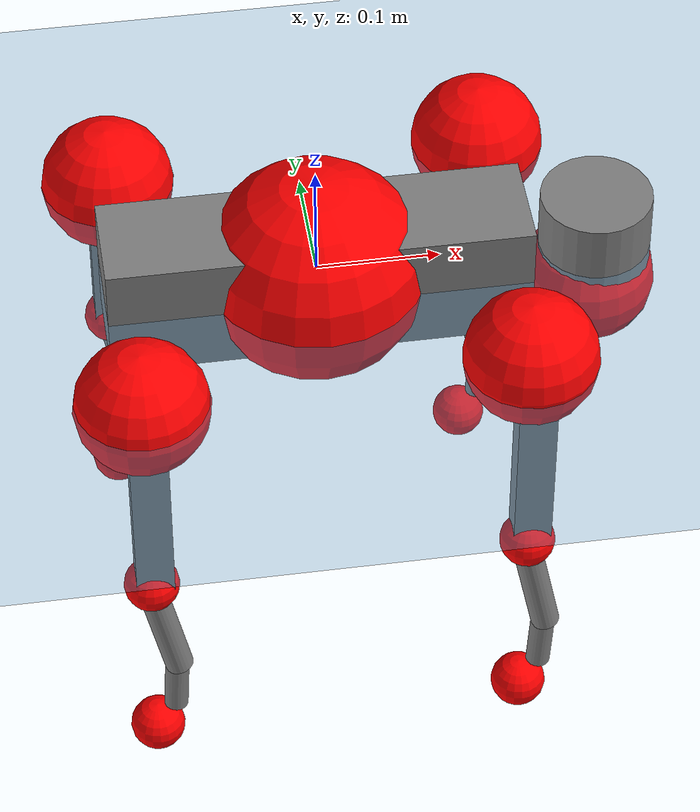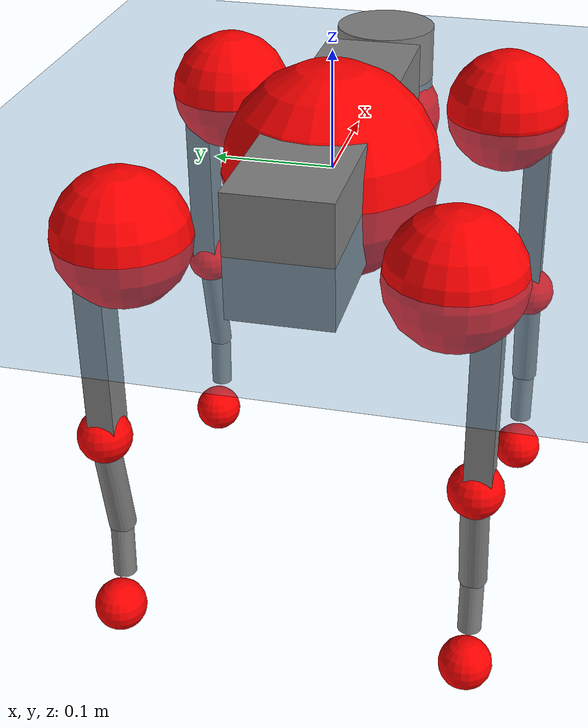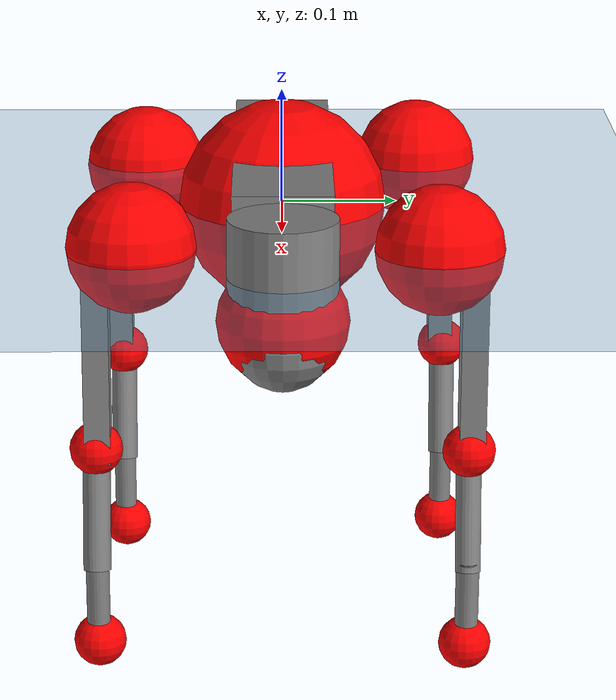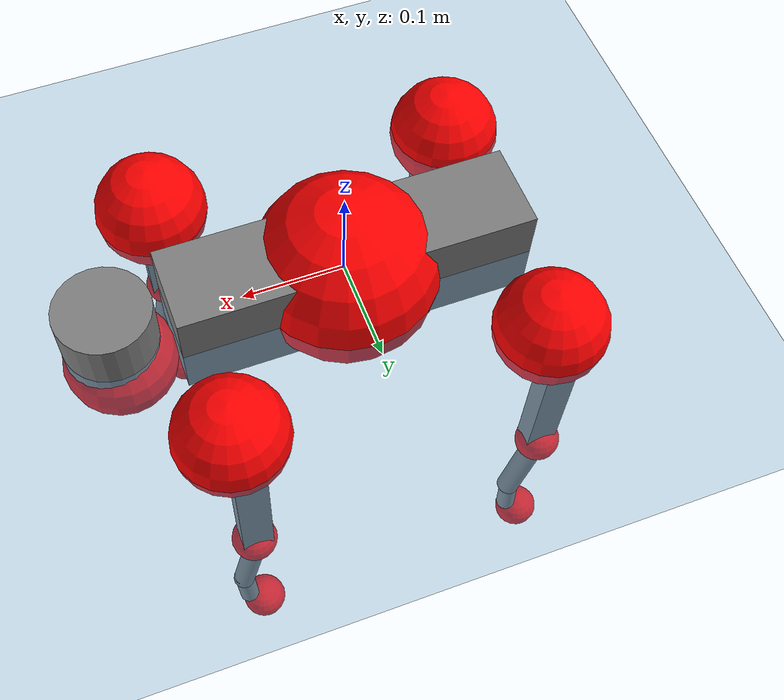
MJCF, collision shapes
<mujoco model="go2">
  <compiler angle="radian" assetdir="assets" balanceinertia="true" inertiafromgeom="false"/>

  <option timestep="0.005" density="1.2" viscosity="2e-05"/>

  <size nkey="1"/>

  <visual>
    <quality shadowsize="8192"/>
    <map shadowclip="0.5"/>
  </visual>

  <default>
    <default class="/">
      <geom contype="0" conaffinity="0" group="1" solref="-1000 -80"/>
      <site size="0.01 0.005 0.005" group="5"/>
      <general forcelimited="true" biastype="affine" gainprm="20" biasprm="0 -20 -0.5"/>
      <default class="go2">
        <joint armature="0.01" damping="0.01" frictionloss="0.2"/>
        <geom condim="1" margin="0.001"/>
        <default class="visual">
          <geom type="mesh" group="2"/>
        </default>
        <default class="collision">
          <geom group="3"/>
          <default class="foot">
            <geom size="0.022 0 0" condim="6" priority="1" friction="0.8 0.02 0.01" solimp="0.015 1 0.022"/>
          </default>
        </default>
        <default class="reward_collision_sphere">
          <geom group="5" rgba="1 0 0 1"/>
        </default>
      </default>
    </default>
  </default>

  <asset>
    <texture type="skybox" colorspace="auto" name="//unnamed_texture_0" builtin="gradient" rgb1="0.95 0.95 0.95" rgb2="0.95 0.95 0.95" width="100" height="600"/>
    <texture type="2d" colorspace="auto" name="texplane" builtin="checker" rgb1="0.345 0.575 0.748" rgb2="0.345 0.575 0.748" markrgb="1 1 1" width="512" height="512"/>
    <material name="MatPlane" class="/" texture="texplane" texuniform="true" texrepeat="2 2" specular="0.9"/>
    <material name="metal" class="/" rgba="0.9 0.95 0.95 1"/>
    <material name="black" class="/" rgba="0 0 0 1"/>
    <material name="white" class="/"/>
    <material name="gray" class="/" rgba="0.671705 0.692426 0.77427 1"/>
    <mesh name="base_0" class="/" file="base_0.obj"/>
    <mesh name="base_1" class="/" file="base_1.obj"/>
    <mesh name="base_2" class="/" file="base_2.obj"/>
    <mesh name="base_3" class="/" file="base_3.obj"/>
    <mesh name="base_4" class="/" file="base_4.obj"/>
    <mesh name="hip_0" class="/" file="hip_0.obj"/>
    <mesh name="hip_1" class="/" file="hip_1.obj"/>
    <mesh name="thigh_0" class="/" file="thigh_0.obj"/>
    <mesh name="thigh_1" class="/" file="thigh_1.obj"/>
    <mesh name="thigh_mirror_0" class="/" file="thigh_mirror_0.obj"/>
    <mesh name="thigh_mirror_1" class="/" file="thigh_mirror_1.obj"/>
    <mesh name="calf_0" class="/" file="calf_0.obj"/>
    <mesh name="calf_1" class="/" file="calf_1.obj"/>
    <mesh name="calf_mirror_0" class="/" file="calf_mirror_0.obj"/>
    <mesh name="calf_mirror_1" class="/" file="calf_mirror_1.obj"/>
    <mesh name="foot" class="/" file="foot.obj"/>
  </asset>

  <worldbody>
    <geom name="floor" class="/" size="100 100 0.125" type="plane" group="0" material="MatPlane"/>
    <light name="toplight_shadow" class="/" pos="0 0 5" dir="0.0990148 0.0990148 -0.990148" type="directional" ambient="0.04 0.04 0.04" diffuse="0.55 0.55 0.55" specular="0.12 0.12 0.12"/>
    <light name="toplight_fill" class="/" pos="0 0 5" dir="0.0990148 0.0990148 -0.990148" type="directional" castshadow="false" ambient="0.04 0.04 0.04" diffuse="0.3 0.3 0.3" specular="0.08 0.08 0.08"/>
    <body name="trunk" childclass="go2" pos="-0.000838846 0.000529231 -0.00126268" quat="1 -0.000779813 -0.000347537 0.000252814">
      <inertial pos="0.015556 0.00222555 -0.0045499" quat="-0.0085699 0.71327 -0.00728672 0.700799" mass="5.05927" diaginertia="0.0353181 0.15243 0.0100618"/>
      <joint name="//unnamed_joint_0" type="free" armature="0" damping="0" frictionloss="0"/>
      <geom name="//unnamed_geom_1" class="visual" material="black" mesh="base_0"/>
      <geom name="//unnamed_geom_2" class="visual" material="black" mesh="base_1"/>
      <geom name="//unnamed_geom_3" class="visual" material="black" mesh="base_2"/>
      <geom name="//unnamed_geom_4" class="visual" material="white" mesh="base_3"/>
      <geom name="//unnamed_geom_5" class="visual" material="gray" mesh="base_4"/>
      <geom name="trunk_1" class="collision" size="0.170815 0.0424539 0.051762" type="box"/>
      <geom name="trunk_2" class="collision" size="0.0454053 0.0408648" pos="0.227298 0 0.00836956" type="cylinder"/>
      <geom name="trunk_3" class="collision" size="0.042681" pos="0.233678 0 -0.0502174"/>
      <geom name="//unnamed_geom_9" class="reward_collision_sphere" size="0.0908106"/>
      <geom name="//unnamed_geom_10" class="reward_collision_sphere" size="0.0544863" pos="0.22331 0 -0.037663"/>
      <site name="imu" pos="-0.0209733 0.0139228 0.0222081" size="0.00908106"/>
      <camera name="track" pos="0 -2.17965 0" quat="0.707107 0.707107 0 0" mode="trackcom"/>
      <camera name="ego_camera" pos="0.248831 0 0.037663" quat="-0.5 -0.5 0.5 0.5"/>
      <body name="FL_hip" pos="0.153205 0.0540789 0.00142521" quat="1 0.000224661 -0.00043924 -9.94239e-05">
        <inertial pos="-0.0063879 0.00201738 -0.000747278" quat="0.494084 0.499267 0.511137 0.495331" mass="0.492107" diaginertia="0.000284894 0.000873169 0.000189815"/>
        <joint name="FL_hip_joint" pos="0 0 0" axis="0.999998 0.00181573 -0.00112859" range="-1.0576 1.10324" armature="0.00916322" damping="0" frictionloss="0.205879"/>
        <geom name="//unnamed_geom_11" class="visual" material="metal" mesh="hip_0"/>
        <geom name="//unnamed_geom_12" class="visual" material="gray" mesh="hip_1"/>
        <geom name="//unnamed_geom_13" class="collision" size="0.0417729 0.0181621" pos="0 0.087186 0" quat="0.707107 0.707107 0 0" type="cylinder"/>
        <geom name="//unnamed_geom_14" class="reward_collision_sphere" size="0.0544863" pos="0 0.0762877 0"/>
        <body name="FL_thigh" pos="-0.00313454 0.106517 0.000824486" quat="1 -0.000279668 -0.000304476 5.66511e-05">
          <inertial pos="-0.00225577 -0.0241483 -0.0264392" quat="0.831876 0.0873495 -0.0240617 0.547516" mass="0.842461" diaginertia="0.00186716 0.00871731 0.000339588"/>
          <joint name="FL_thigh_joint" pos="0 0 0" axis="0.00539295 0.99996 -0.00706599" stiffness="0.00485596" range="-1.62229 3.49453" armature="0.00795842" damping="0.019294" frictionloss="0.181361"/>
          <geom name="//unnamed_geom_15" class="visual" material="metal" mesh="thigh_0"/>
          <geom name="//unnamed_geom_16" class="visual" material="gray" mesh="thigh_1"/>
          <geom name="//unnamed_geom_17" class="collision" size="0.0967132 0.0111243 0.0154378" pos="0 0 -0.0891358" quat="0.707107 0 0.707107 0" type="box"/>
          <body name="FL_calf" pos="0.00118961 -0.00205555 -0.179292" quat="1 -8.37554e-05 -1.71689e-05 -5.71316e-05">
            <inertial pos="0.00445385 -0.00232167 -0.117914" quat="0.712963 0.000946831 -0.002097 0.701198" mass="0.183076" diaginertia="0.000472949 0.00223825 2.18472e-05"/>
            <joint name="FL_calf_joint" pos="0 0 0" axis="-0.00956871 0.99985 -0.0144261" range="-2.73638 -0.779884" armature="0.00878956" damping="0" frictionloss="0.191152"/>
            <geom name="//unnamed_geom_18" class="visual" material="gray" mesh="calf_0"/>
            <geom name="//unnamed_geom_19" class="visual" material="black" mesh="calf_1"/>
            <geom name="FL_calf0" class="collision" size="0.0108973 0.0544863" pos="0.00638029 0 -0.0502174" quat="0.994493 0 -0.104807 0" type="cylinder"/>
            <geom name="//unnamed_geom_21" class="collision" size="0.00998916 0.0295134" pos="0.0159507 0 -0.12387" quat="0.999688 0 0.0249974 0" type="cylinder"/>
            <geom name="//unnamed_geom_22" class="visual" pos="0 0 -0.178272" quat="1 0 0 0" material="black" mesh="foot"/>
            <geom name="FL_foot" class="foot" size="0.0152796" pos="-0.00159507 0 -0.178272"/>
            <geom name="//unnamed_geom_24" class="reward_collision_sphere" size="0.0227026"/>
            <geom name="//unnamed_geom_25" class="reward_collision_sphere" size="0.0227026" pos="-0.00159507 0 -0.178272"/>
            <site name="FL_foot" class="foot" pos="-0.00159507 0 -0.178272" size="0.00908106"/>
          </body>
        </body>
      </body>
      <body name="FR_hip" pos="0.153189 -0.0494258 0.00320522" quat="1 -0.000430585 -0.000196419 0.00028057">
        <inertial pos="-0.00568676 -0.00231792 -0.000618441" quat="0.498488 0.500808 0.502139 0.498556" mass="0.506783" diaginertia="0.00027969 0.000903578 0.000192268"/>
        <joint name="FR_hip_joint" pos="0 0 0" axis="0.999908 0.00356741 -0.0131028" range="-1.07755 0.995214" armature="0.00935838" damping="0" frictionloss="0.207507"/>
        <geom name="//unnamed_geom_26" class="visual" pos="0 2.20289e-09 9.44864e-08" quat="4.63268e-05 1 0 0" material="metal" mesh="hip_0"/>
        <geom name="//unnamed_geom_27" class="visual" pos="0 3.57115e-09 -2.33701e-07" quat="4.63268e-05 1 0 0" material="gray" mesh="hip_1"/>
        <geom name="//unnamed_geom_28" class="collision" size="0.0417729 0.0181621" pos="0 -0.087186 0" quat="0.707107 0.707107 0 0" type="cylinder"/>
        <geom name="//unnamed_geom_29" class="reward_collision_sphere" size="0.0544863" pos="0 -0.0762877 0"/>
        <body name="FR_thigh" pos="-0.000544309 -0.106964 -0.00168279" quat="0.999999 0.000213096 0.00102253 0.000573638">
          <inertial pos="-0.00463062 0.0239885 -0.0291412" quat="0.549767 -0.0157695 0.0849162 0.830841" mass="0.894571" diaginertia="0.00191028 0.00872434 0.000372413"/>
          <joint name="FR_thigh_joint" pos="0 0 0" axis="-0.000921552 -0.999999 -0.000540402" stiffness="0.01077" range="-3.49081 1.51385" armature="0.00794947" damping="0.0121888" frictionloss="0.157988"/>
          <geom name="//unnamed_geom_30" class="visual" material="metal" mesh="thigh_mirror_0"/>
          <geom name="//unnamed_geom_31" class="visual" material="gray" mesh="thigh_mirror_1"/>
          <geom name="//unnamed_geom_32" class="collision" size="0.0967132 0.0111243 0.0154378" pos="0 0 -0.0891358" quat="0.707107 0 0.707107 0" type="box"/>
          <body name="FR_calf" pos="-0.00225182 -0.00172504 -0.176966" quat="1 3.81262e-05 6.30055e-06 -2.88068e-05">
            <inertial pos="0.00454649 -0.00117396 -0.116174" quat="0.70579 -0.00204022 0.000138553 0.708418" mass="0.177591" diaginertia="0.000475232 0.00225757 2.05553e-05"/>
            <joint name="FR_calf_joint" pos="0 0 0" axis="-0.000490834 -0.999999 0.00162872" range="0.841849 2.7387" armature="0.00872849" damping="0" frictionloss="0.158639"/>
            <geom name="//unnamed_geom_33" class="visual" material="gray" mesh="calf_mirror_0"/>
            <geom name="//unnamed_geom_34" class="visual" material="black" mesh="calf_mirror_1"/>
            <geom name="FR_calf0" class="collision" size="0.0118054 0.0544863" pos="0.00797536 0 -0.0502174" quat="0.995004 0 -0.0998334 0" type="cylinder"/>
            <geom name="//unnamed_geom_36" class="collision" size="0.00998916 0.0295134" pos="0.0159507 0 -0.12387" quat="0.999688 0 0.0249974 0" type="cylinder"/>
            <geom name="//unnamed_geom_37" class="visual" pos="0 0 -0.178272" quat="1 0 0 0" material="black" mesh="foot"/>
            <geom name="FR_foot" class="foot" size="0.0204722" pos="-0.00159507 0 -0.178272"/>
            <geom name="//unnamed_geom_39" class="reward_collision_sphere" size="0.0227026"/>
            <geom name="//unnamed_geom_40" class="reward_collision_sphere" size="0.0227026" pos="-0.00159507 0 -0.178272"/>
            <site name="FR_foot" class="foot" pos="-0.00159507 0 -0.178272" size="0.00908106"/>
          </body>
        </body>
      </body>
      <body name="RL_hip" pos="-0.154597 0.0481664 0.000189449" quat="0.999999 -0.0011874 -4.58788e-05 0.000225847">
        <inertial pos="0.00308462 0.000231868 -0.00118979" quat="0.50747 0.49904 0.48884 0.504449" mass="0.496055" diaginertia="0.000266739 0.000907064 0.000183915"/>
        <joint name="RL_hip_joint" pos="0 0 0" axis="-0.999995 0.00250046 0.00172562" range="-1.09277 1.08361" armature="0.0101339" damping="0.0179438" frictionloss="0.178713"/>
        <geom name="//unnamed_geom_41" class="visual" pos="3.43414e-10 0 6.7317e-08" quat="4.63268e-05 0 1 0" material="metal" mesh="hip_0"/>
        <geom name="//unnamed_geom_42" class="visual" pos="5.56715e-10 0 5.97006e-08" quat="4.63268e-05 0 1 0" material="gray" mesh="hip_1"/>
        <geom name="//unnamed_geom_43" class="collision" size="0.0417729 0.0181621" pos="0 0.087186 0" quat="0.707107 0.707107 0 0" type="cylinder"/>
        <geom name="//unnamed_geom_44" class="reward_collision_sphere" size="0.0544863" pos="0 0.0762877 0"/>
        <body name="RL_thigh" pos="-0.00140296 0.102128 -0.00156593" quat="0.999999 0.00106679 -0.000215194 0.000905503">
          <inertial pos="-0.00211517 -0.0268617 -0.0284295" quat="0.829487 0.0848162 -0.0199264 0.551688" mass="0.877623" diaginertia="0.00197523 0.00896545 0.000376152"/>
          <joint name="RL_thigh_joint" pos="0 0 0" axis="0.00393541 0.999977 0.00546989" stiffness="0.0145148" range="-0.579464 4.52597" armature="0.00885722" damping="0.0120299" frictionloss="0.203231"/>
          <geom name="//unnamed_geom_45" class="visual" material="metal" mesh="thigh_0"/>
          <geom name="//unnamed_geom_46" class="visual" material="gray" mesh="thigh_1"/>
          <geom name="//unnamed_geom_47" class="collision" size="0.0967132 0.0111243 0.0154378" pos="0 0 -0.0891358" quat="0.707107 0 0.707107 0" type="box"/>
          <body name="RL_calf" pos="-0.00136205 0.00267417 -0.180857" quat="0.999999 0.000515923 -0.000448508 0.001053">
            <inertial pos="0.00358619 0.00223863 -0.119157" quat="0.707515 0.00402246 -0.013055 0.706566" mass="0.172547" diaginertia="0.000463794 0.00210045 2.16439e-05"/>
            <joint name="RL_calf_joint" pos="0 0 0" axis="-0.00940024 0.999937 -0.00610864" range="-2.73238 -0.848075" armature="0.00996842" damping="0.00296898" frictionloss="0.179917"/>
            <geom name="//unnamed_geom_48" class="visual" material="gray" mesh="calf_0"/>
            <geom name="//unnamed_geom_49" class="visual" material="black" mesh="calf_1"/>
            <geom name="RL_calf0" class="collision" size="0.0118054 0.0544863" pos="0.00797536 0 -0.0502174" quat="0.995004 0 -0.0998334 0" type="cylinder"/>
            <geom name="//unnamed_geom_51" class="collision" size="0.00998916 0.0295134" pos="0.0159507 0 -0.12387" quat="0.999688 0 0.0249974 0" type="cylinder"/>
            <geom name="//unnamed_geom_52" class="visual" pos="0 0 -0.178272" quat="1 0 0 0" material="black" mesh="foot"/>
            <geom name="RL_foot" class="foot" size="0.0204386" pos="-0.00159507 0 -0.178272"/>
            <geom name="//unnamed_geom_54" class="reward_collision_sphere" size="0.0227026"/>
            <geom name="//unnamed_geom_55" class="reward_collision_sphere" size="0.0227026" pos="-0.00159507 0 -0.178272"/>
            <site name="RL_foot" class="foot" pos="-0.00159507 0 -0.178272" size="0.00908106"/>
          </body>
        </body>
      </body>
      <body name="RR_hip" pos="-0.153132 -0.0501959 -0.00598982" quat="1 0.000128037 -0.000143743 -0.000181799">
        <inertial pos="0.00160169 -0.00474384 -0.000186592" quat="0.494955 0.496471 0.495033 0.513302" mass="0.512242" diaginertia="0.000295651 0.00092823 0.000206883"/>
        <joint name="RR_hip_joint" pos="0 0 0" axis="-0.999992 -0.00367612 0.00134619" range="-1.09379 1.04823" armature="0.00913876" damping="0.00320831" frictionloss="0.188635"/>
        <geom name="//unnamed_geom_56" class="visual" pos="-3.33295e-10 2.20289e-09 -2.71694e-08" quat="2.14617e-09 4.63268e-05 4.63268e-05 -1" material="metal" mesh="hip_0"/>
        <geom name="//unnamed_geom_57" class="visual" pos="-5.81744e-10 3.57115e-09 2.93402e-07" quat="2.14617e-09 4.63268e-05 4.63268e-05 -1" material="gray" mesh="hip_1"/>
        <geom name="//unnamed_geom_58" class="collision" size="0.0417729 0.0181621" pos="0 -0.087186 0" quat="0.707107 0.707107 0 0" type="cylinder"/>
        <geom name="//unnamed_geom_59" class="reward_collision_sphere" size="0.0544863" pos="0 -0.0762877 0"/>
        <body name="RR_thigh" pos="7.87511e-05 -0.102449 -0.00220114" quat="1 -1.04337e-05 4.45345e-05 -3.36941e-06">
          <inertial pos="-0.000918378 0.0219191 -0.0274438" quat="0.556164 -0.0302926 0.0924309 0.825361" mass="0.839073" diaginertia="0.00194345 0.00879974 0.000357011"/>
          <joint name="RR_thigh_joint" pos="0 0 0" axis="-0.0159594 -0.999802 0.0118616" range="-4.53054 0.469964" armature="0.00917387" damping="0" frictionloss="0.17446"/>
          <geom name="//unnamed_geom_60" class="visual" material="metal" mesh="thigh_mirror_0"/>
          <geom name="//unnamed_geom_61" class="visual" material="gray" mesh="thigh_mirror_1"/>
          <geom name="//unnamed_geom_62" class="collision" size="0.0967132 0.0111243 0.0154378" pos="0 0 -0.0891358" quat="0.707107 0 0.707107 0" type="box"/>
          <body name="RR_calf" pos="-0.00234992 0.00205732 -0.180018" quat="1 -8.68334e-05 -1.9822e-05 0.000289776">
            <inertial pos="0.00604018 0.000633954 -0.118566" quat="0.707055 -0.00210195 0.00930958 0.707095" mass="0.187268" diaginertia="0.000500596 0.00240661 2.20975e-05"/>
            <joint name="RR_calf_joint" pos="0 0 0" axis="-0.000977772 -0.999979 -0.00640006" range="0.879902 2.71375" armature="0.00929873" damping="0.00555272" frictionloss="0.173022"/>
            <geom name="//unnamed_geom_63" class="visual" material="gray" mesh="calf_mirror_0"/>
            <geom name="//unnamed_geom_64" class="visual" material="black" mesh="calf_mirror_1"/>
            <geom name="RR_calf0" class="collision" size="0.0118054 0.0544863" pos="0.00797536 0 -0.0502174" quat="0.995004 0 -0.0998334 0" type="cylinder"/>
            <geom name="//unnamed_geom_66" class="collision" size="0.00998916 0.0295134" pos="0.0159507 0 -0.12387" quat="0.999688 0 0.0249974 0" type="cylinder"/>
            <geom name="//unnamed_geom_67" class="visual" pos="0 0 -0.178272" quat="1 0 0 0" material="black" mesh="foot"/>
            <geom name="RR_foot" class="foot" size="0.0216999" pos="-0.00159507 0 -0.178272"/>
            <geom name="//unnamed_geom_69" class="reward_collision_sphere" size="0.0227026"/>
            <geom name="//unnamed_geom_70" class="reward_collision_sphere" size="0.0227026" pos="-0.00159507 0 -0.178272"/>
            <site name="RR_foot" class="foot" pos="-0.00159507 0 -0.178272" size="0.00908106"/>
          </body>
        </body>
      </body>
    </body>
  </worldbody>

  <contact>
    <pair class="/" geom1="floor" geom2="FL_foot" name="//unnamed_contact_0"/>
    <pair class="/" geom1="floor" geom2="FR_foot" name="//unnamed_contact_1"/>
    <pair class="/" geom1="floor" geom2="RL_foot" name="//unnamed_contact_2"/>
    <pair class="/" geom1="floor" geom2="RR_foot" name="//unnamed_contact_3"/>
  </contact>

  <actuator>
    <general name="FL_hip" class="/" joint="FL_hip_joint" forcerange="-21.8056 21.8056" gainprm="18.3135" biasprm="0 -18.3135 -0.440877"/>
    <general name="FL_thigh" class="/" joint="FL_thigh_joint" forcerange="-21.4016 21.4016" gainprm="18.3135" biasprm="0 -18.3135 -0.440877"/>
    <general name="FL_calf" class="/" joint="FL_calf_joint" forcerange="-45.4966 45.4966" gainprm="18.3135" biasprm="0 -18.3135 -0.440877"/>
    <general name="FR_hip" class="/" joint="FR_hip_joint" forcerange="-21.816 21.816" gainprm="18.3135" biasprm="0 -18.3135 -0.440877"/>
    <general name="FR_thigh" class="/" joint="FR_thigh_joint" forcerange="-23.6726 23.6726" gainprm="18.3135" biasprm="0 -18.3135 -0.440877"/>
    <general name="FR_calf" class="/" joint="FR_calf_joint" forcerange="-40.0244 40.0244" gainprm="18.3135" biasprm="0 -18.3135 -0.440877"/>
    <general name="RL_hip" class="/" joint="RL_hip_joint" forcerange="-21.452 21.452" gainprm="18.3135" biasprm="0 -18.3135 -0.440877"/>
    <general name="RL_thigh" class="/" joint="RL_thigh_joint" forcerange="-20.4528 20.4528" gainprm="18.3135" biasprm="0 -18.3135 -0.440877"/>
    <general name="RL_calf" class="/" joint="RL_calf_joint" forcerange="-44.5463 44.5463" gainprm="18.3135" biasprm="0 -18.3135 -0.440877"/>
    <general name="RR_hip" class="/" joint="RR_hip_joint" forcerange="-21.4168 21.4168" gainprm="18.3135" biasprm="0 -18.3135 -0.440877"/>
    <general name="RR_thigh" class="/" joint="RR_thigh_joint" forcerange="-20.1496 20.1496" gainprm="18.3135" biasprm="0 -18.3135 -0.440877"/>
    <general name="RR_calf" class="/" joint="RR_calf_joint" forcerange="-45.7098 45.7098" gainprm="18.3135" biasprm="0 -18.3135 -0.440877"/>
  </actuator>

  <sensor>
    <gyro site="imu" name="imu_angular_velocity"/>
    <velocimeter site="imu" name="imu_linear_velocity"/>
    <framelinvel objtype="site" objname="FL_foot" name="FL_foot_global_linear_velocity"/>
    <framelinvel objtype="site" objname="FR_foot" name="FR_foot_global_linear_velocity"/>
    <framelinvel objtype="site" objname="RL_foot" name="RL_foot_global_linear_velocity"/>
    <framelinvel objtype="site" objname="RR_foot" name="RR_foot_global_linear_velocity"/>
  </sensor>

  <keyframe>
    <key name="home" qpos="0 0 0.325 1 0 0 0 0.1 0.8 -1.5 -0.1 -0.8 1.5 -0.1 0.8 -1.5 0.1 -0.8 1.5"/>
  </keyframe>
</mujoco>
